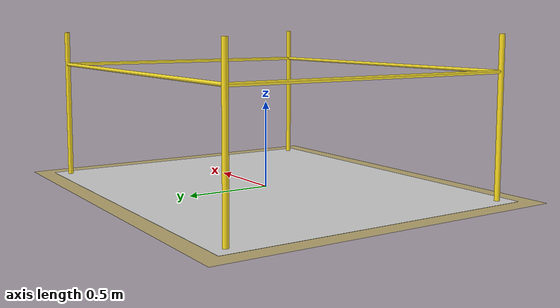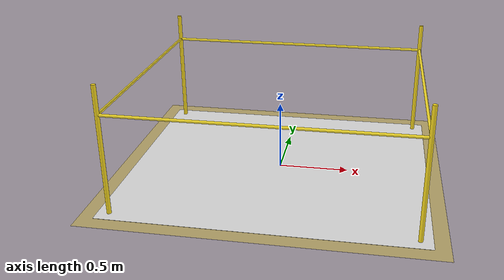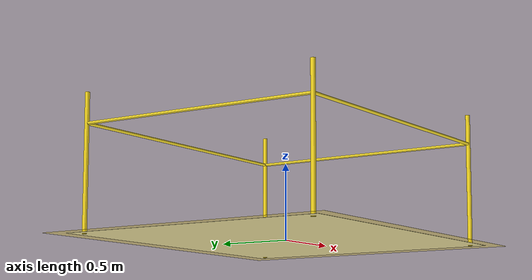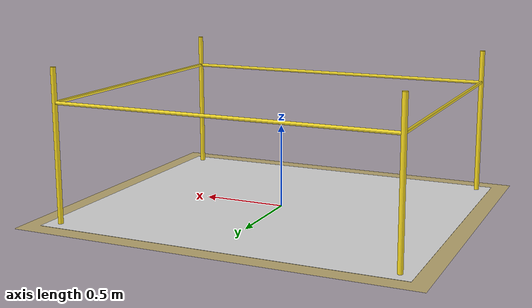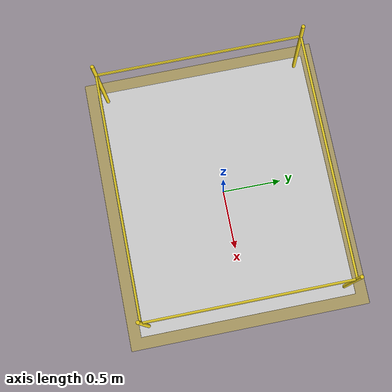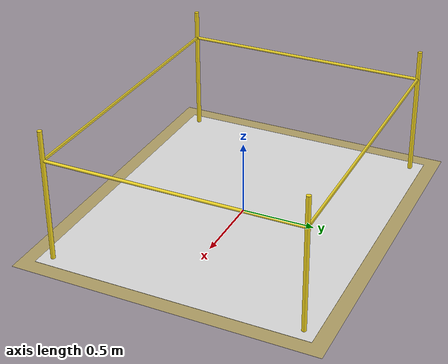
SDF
<?xml version="1.0"?>
<sdf version="1.6">
  <model name="high_voltage_zone">
    <static>true</static>
    <link name="link">
      <!-- 4根立柱碰撞 -->
      <collision name="collision_post_fl">
        <pose>1.00 0.84 0.45 0 0 0</pose>
        <geometry><cylinder><radius>0.015</radius><length>0.90</length></cylinder></geometry>
        <surface><friction><ode><mu>1.0</mu><mu2>1.0</mu2></ode></friction></surface>
      </collision>
      <collision name="collision_post_fr">
        <pose>1.00 -0.84 0.45 0 0 0</pose>
        <geometry><cylinder><radius>0.015</radius><length>0.90</length></cylinder></geometry>
        <surface><friction><ode><mu>1.0</mu><mu2>1.0</mu2></ode></friction></surface>
      </collision>
      <collision name="collision_post_rl">
        <pose>-1.00 0.84 0.45 0 0 0</pose>
        <geometry><cylinder><radius>0.015</radius><length>0.90</length></cylinder></geometry>
        <surface><friction><ode><mu>1.0</mu><mu2>1.0</mu2></ode></friction></surface>
      </collision>
      <collision name="collision_post_rr">
        <pose>-1.00 -0.84 0.45 0 0 0</pose>
        <geometry><cylinder><radius>0.015</radius><length>0.90</length></cylinder></geometry>
        <surface><friction><ode><mu>1.0</mu><mu2>1.0</mu2></ode></friction></surface>
      </collision>

      <!-- 4面连续碰撞墙（立柱之间的屏障，激光可检测的连续平面） -->
      <collision name="collision_wall_front">
        <pose>1.00 0 0.45 0 0 0</pose>
        <geometry><box><size>0.02 1.68 0.90</size></box></geometry>
        <surface><friction><ode><mu>1.0</mu><mu2>1.0</mu2></ode></friction></surface>
      </collision>
      <collision name="collision_wall_back">
        <pose>-1.00 0 0.45 0 0 0</pose>
        <geometry><box><size>0.02 1.68 0.90</size></box></geometry>
        <surface><friction><ode><mu>1.0</mu><mu2>1.0</mu2></ode></friction></surface>
      </collision>
      <collision name="collision_wall_left">
        <pose>0 0.84 0.45 0 0 0</pose>
        <geometry><box><size>2.00 0.02 0.90</size></box></geometry>
        <surface><friction><ode><mu>1.0</mu><mu2>1.0</mu2></ode></friction></surface>
      </collision>
      <collision name="collision_wall_right">
        <pose>0 -0.84 0.45 0 0 0</pose>
        <geometry><box><size>2.00 0.02 0.90</size></box></geometry>
        <surface><friction><ode><mu>1.0</mu><mu2>1.0</mu2></ode></friction></surface>
      </collision>

      <!-- 地面警示线（仅视觉） -->
      <visual name="warning_rect_outer">
        <pose>0 0 0.002 0 0 0</pose>
        <geometry><box><size>2.36 2.04 0.002</size></box></geometry>
        <material><ambient>0.95 0.82 0.08 0.35</ambient><diffuse>0.95 0.82 0.08 0.35</diffuse></material>
      </visual>
      <visual name="warning_rect_inner">
        <pose>0 0 0.004 0 0 0</pose>
        <geometry><box><size>2.16 1.84 0.001</size></box></geometry>
        <material><ambient>0.88 0.88 0.88 0.0</ambient><diffuse>0.88 0.88 0.88 0.0</diffuse></material>
      </visual>

      <!-- 4根立柱视觉 -->
      <visual name="post_fl">
        <pose>1.00 0.84 0.45 0 0 0</pose>
        <geometry><cylinder><radius>0.015</radius><length>0.90</length></cylinder></geometry>
        <material><ambient>0.92 0.82 0.12 1</ambient><diffuse>0.98 0.86 0.12 1</diffuse></material>
      </visual>
      <visual name="post_fr">
        <pose>1.00 -0.84 0.45 0 0 0</pose>
        <geometry><cylinder><radius>0.015</radius><length>0.90</length></cylinder></geometry>
        <material><ambient>0.92 0.82 0.12 1</ambient><diffuse>0.98 0.86 0.12 1</diffuse></material>
      </visual>
      <visual name="post_rl">
        <pose>-1.00 0.84 0.45 0 0 0</pose>
        <geometry><cylinder><radius>0.015</radius><length>0.90</length></cylinder></geometry>
        <material><ambient>0.92 0.82 0.12 1</ambient><diffuse>0.98 0.86 0.12 1</diffuse></material>
      </visual>
      <visual name="post_rr">
        <pose>-1.00 -0.84 0.45 0 0 0</pose>
        <geometry><cylinder><radius>0.015</radius><length>0.90</length></cylinder></geometry>
        <material><ambient>0.92 0.82 0.12 1</ambient><diffuse>0.98 0.86 0.12 1</diffuse></material>
      </visual>

      <!-- 4根横杆视觉 -->
      <visual name="rail_front">
        <pose>0 0.84 0.70 0 1.57079 0</pose>
        <geometry><cylinder><radius>0.010</radius><length>2.0</length></cylinder></geometry>
        <material><ambient>0.96 0.86 0.16 1</ambient><diffuse>0.96 0.86 0.16 1</diffuse></material>
      </visual>
      <visual name="rail_back">
        <pose>0 -0.84 0.70 0 1.57079 0</pose>
        <geometry><cylinder><radius>0.010</radius><length>2.0</length></cylinder></geometry>
        <material><ambient>0.96 0.86 0.16 1</ambient><diffuse>0.96 0.86 0.16 1</diffuse></material>
      </visual>
      <visual name="rail_left">
        <pose>-1.00 0 0.70 1.57079 0 0</pose>
        <geometry><cylinder><radius>0.010</radius><length>1.68</length></cylinder></geometry>
        <material><ambient>0.96 0.86 0.16 1</ambient><diffuse>0.96 0.86 0.16 1</diffuse></material>
      </visual>
      <visual name="rail_right">
        <pose>1.00 0 0.70 1.57079 0 0</pose>
        <geometry><cylinder><radius>0.010</radius><length>1.68</length></cylinder></geometry>
        <material><ambient>0.96 0.86 0.16 1</ambient><diffuse>0.96 0.86 0.16 1</diffuse></material>
      </visual>
    </link>
  </model>
</sdf>
